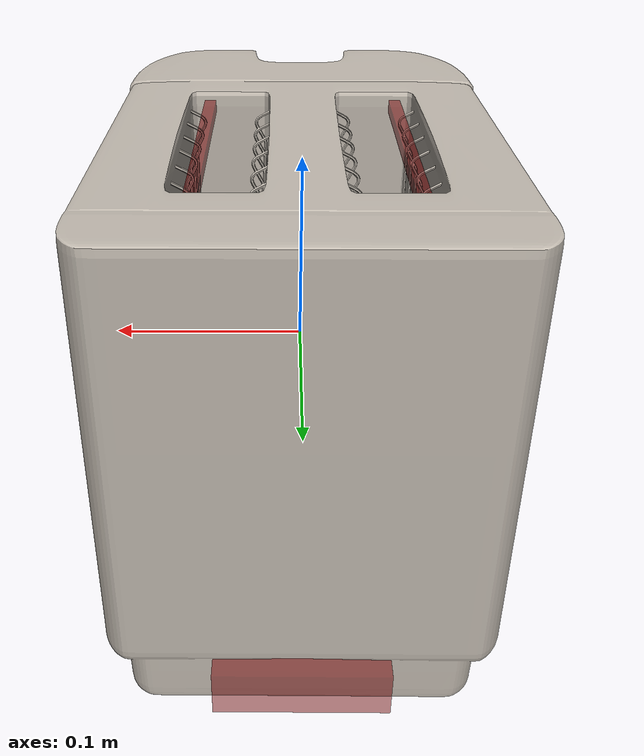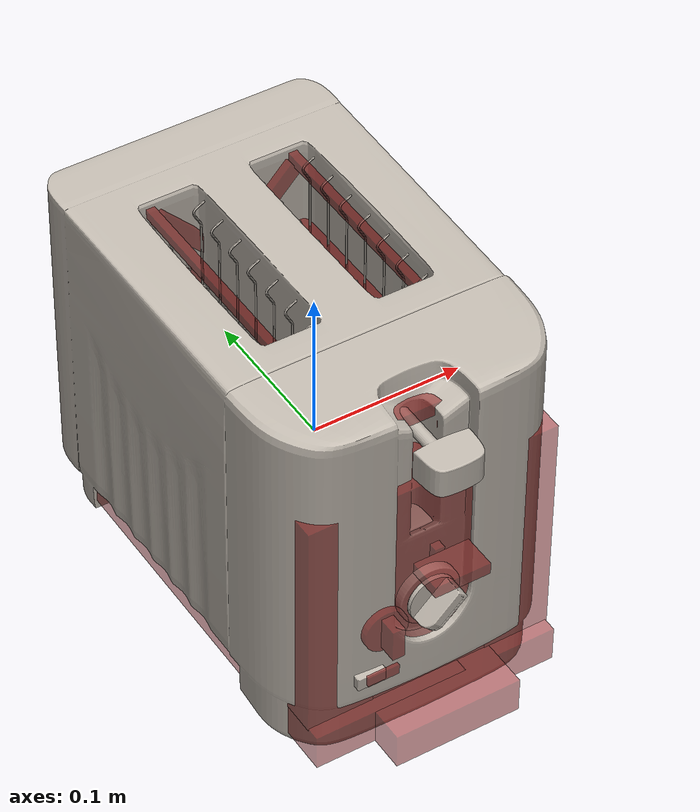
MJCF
<?xml version='1.0' encoding='UTF-8'?>
<mujoco model="model">
  <option timestep="0.002" gravity="0.0 0.0 -9.81"/>
  <compiler angle="radian"/>
  <asset>
    <mesh file="visuals/button_cancel.obj" name="button_cancel_vis"/>
    <mesh file="visuals/knob_doneness.obj" name="knob_doneness_vis"/>
    <mesh file="visuals/lever.obj" name="lever_vis"/>
    <mesh file="visuals/Body001.obj" name="Body001_vis"/>
    <mesh file="visuals/Body002.obj" name="Body002_vis"/>
    <texture file="visuals/T_BC001.png" name="Body001_material" type="2d"/>
    <material name="Body001_material" rgba="1 1 1 1.0" texture="Body001_material" shininess="0.4472135901451111" specular="0.33333333333333337"/>
    <texture file="visuals/T_BC001.png" name="button_cancel_material" type="2d"/>
    <material name="button_cancel_material" rgba="1 1 1 1.0" texture="button_cancel_material" shininess="0.4472135901451111" specular="0.33333333333333337"/>
    <texture file="visuals/T_BC001.png" name="knob_doneness_material" type="2d"/>
    <material name="knob_doneness_material" rgba="1 1 1 1.0" texture="knob_doneness_material" shininess="0.4472135901451111" specular="0.33333333333333337"/>
    <texture file="visuals/T_BC001.png" name="lever_material" type="2d"/>
    <material name="lever_material" rgba="1 1 1 1.0" texture="lever_material" shininess="0.4472135901451111" specular="0.33333333333333337"/>
    <texture file="visuals/T_BC001.png" name="Body002_material" type="2d"/>
    <material name="Body002_material" rgba="1 1 1 1.0" texture="Body002_material" shininess="1" specular="1"/>
  </asset>
  <default>
    <default class="visual">
      <geom conaffinity="0" contype="0" group="1" type="mesh"/>
    </default>
    <default class="collision_1">
      <geom group="0" rgba="0.5 0 0 0.5" solref="0.004 1" solimp="0.998 0.998 0.001"/>
    </default>
    <default class="collision_2">
      <geom group="0" rgba="0.5 0 0 0.5" solref="0.004 1" solimp="0.998 0.998 0.001"/>
    </default>
    <default class="collision_3">
      <geom group="0" rgba="0.5 0 0 0.5" solref="0.004 1" solimp="0.998 0.998 0.001"/>
    </default>
    <default class="collision_4">
      <geom group="0" rgba="0.5 0 0 0.5" solref="0.004 1" solimp="0.998 0.998 0.001"/>
    </default>
    <default class="collision_5">
      <geom group="0" rgba="0.5 0 0 0.5" solref="0.004 1" solimp="0.998 0.998 0.001"/>
    </default>
    <default class="spawn">
      <geom group="0" rgba="1 1 1 0.5" contype="0" conaffinity="0"/>
      <site group="0" rgba="1 1 1 0.5"/>
    </default>
    <default class="region">
      <geom group="1" conaffinity="0" contype="0" rgba="0 1 0 0" mass="0"/>
    </default>
  </default>
  <worldbody>
    <body>
      <body name="object">
        <geom mesh="Body001_vis" type="mesh" solimp="0.998 0.998 0.001" solref="0.001 1" friction="0.95 0.3 0.1" class="visual" material="Body001_material"/>
        <geom type="box" pos="-0.05959776043891907 0.003006658283993602 -0.014668268151581287" size="0.0217216145247221 0.12802141904830933 0.0789102166891098" quat="1.0 0.0 0.0 0.0" class="collision_1"/>
        <geom type="box" pos="0.0 -6.329314783215523e-05 -0.1039624884724617" size="0.041809506714344025 0.1570516973733902 0.012170850299298763" quat="1.0 0.0 0.0 0.0" class="collision_1"/>
        <geom type="box" pos="0.0 -0.09182923287153244 0.09976353496313095" size="0.04052017629146576 0.016902979463338852 0.004405675455927849" quat="1.0 0.0 0.0 0.0" class="collision_1"/>
        <geom type="box" pos="0.0 0.13150560855865479 0.09976353496313095" size="0.04051890969276428 0.01816405914723873 0.0044055115431547165" quat="1.0 0.0 0.0 0.0" class="collision_1"/>
        <geom type="box" pos="0.04742656275629997 0.019866859540343285 0.11498066782951355" size="0.0028668621089309454 0.08754163235425949 0.003078827168792486" quat="1.0 0.0 0.0 0.0" class="collision_1"/>
        <geom type="box" pos="-0.04779965803027153 0.019866859540343285 0.11498066782951355" size="0.0028668621089309454 0.08754149824380875 0.003078827168792486" quat="1.0 0.0 0.0 0.0" class="collision_1"/>
        <geom type="box" pos="-0.023999029770493507 -0.06391765177249908 0.08909869939088821" size="0.03058992326259613 0.0060909586027264595 0.005088799633085728" quat="0.9180940985679626 -3.5591591760126325e-15 0.3963625431060791 5.325481922113795e-08" class="collision_1"/>
        <geom type="box" pos="0.02548745647072792 -0.06391765177249908 0.08909869939088821" size="0.03058992326259613 0.0060909586027264595 0.005088799633085728" quat="0.9180940985679626 -2.6683585540660448e-15 -0.3963625431060791 -5.3254829879278986e-08" class="collision_1"/>
        <geom type="box" pos="-0.023999029770493507 0.09989510476589203 0.08909869939088821" size="0.03058992326259613 0.0060909586027264595 0.005088799633085728" quat="0.9180940985679626 -3.5591591760126325e-15 0.3963625431060791 5.325481922113795e-08" class="collision_1"/>
        <geom type="box" pos="0.02548745647072792 0.09989510476589203 0.08909869939088821" size="0.03058992326259613 0.0060909586027264595 0.005088799633085728" quat="0.9180940985679626 -2.6683585540660448e-15 -0.3963625431060791 -5.3254829879278986e-08" class="collision_1"/>
        <geom type="box" pos="0.0 -0.0004563035909086466 -0.1039624884724617" size="0.08117412030696869 0.1335921287536621 0.012170935049653053" quat="1.0 0.0 0.0 0.0" class="collision_1"/>
        <geom type="box" pos="0.060355402529239655 0.003006658283993602 -0.014668268151581287" size="0.021788600832223892 0.12802141904830933 0.0789102166891098" quat="1.0 0.0 0.0 0.0" class="collision_1"/>
        <geom type="box" pos="-0.003613187000155449 0.11358074098825455 -0.014668268151581287" size="0.04483440890908241 0.017447330057621002 0.0789102166891098" quat="1.0 0.0 0.0 0.0" class="collision_1"/>
        <geom type="box" pos="-0.003613187000155449 -0.0912993922829628 -0.014668268151581287" size="0.04483440890908241 0.033389560878276825 0.0789102166891098" quat="1.0 0.0 0.0 0.0" class="collision_1"/>
        <geom type="box" pos="0.0005880509270355105 0.01837708242237568 -0.01223018579185009" size="0.006125060375779867 0.07681065052747726 0.07706676423549652" quat="1.0 0.0 0.0 0.0" class="collision_1"/>
        <body name="button_cancel">
          <joint axis="0.0 1.0 0.0" pos="-0.03639256954193115 -0.13181017339229584 -0.06497253477573395" limited="true" name="button_cancel_joint" range="0.0 0.0015" type="slide" damping="1" frictionloss="1" armature=".01" stiffness="4" springref="-1"/>
          <geom mesh="button_cancel_vis" type="mesh" solimp="0.998 0.998 0.001" solref="0.001 1" friction="0.95 0.3 0.1" class="visual" material="button_cancel_material"/>
          <geom class="collision_2" type="box" pos="-0.03641565516591072 -0.13255558907985687 -0.06485725939273834" size="0.010387005284428596 0.001249536988325417 0.0034361789003014565" quat="1.0 0.0 0.0 0.0" name="button_cancel_main"/>
        </body>
        <body name="knob_doneness">
          <joint axis="0.0 1.0 0.0" pos="-0.0361320823431015 -0.13823910057544708 -0.026508422568440437" limited="true" name="knob_doneness_joint" range="0.0 5.061454830783556" type="hinge" damping="0.05" armature="1" frictionloss="0.75"/>
          <geom mesh="knob_doneness_vis" type="mesh" solimp="0.998 0.998 0.001" solref="0.001 1" friction="0.95 0.3 0.1" class="visual" material="knob_doneness_material"/>
          <geom type="cylinder" pos="-0.03622971102595329 -0.13319255411624908 -0.026554029434919357" size="0.014290799386799335 0.0024779578670859337" quat="0.7071067094802856 0.7071068286895752 0.0 0.0" class="collision_3" friction="100 0.5 0.01"/>
          <geom class="collision_3" type="box" pos="-0.03622971102595329 -0.14175058901309967 -0.026029111817479134" size="0.0038992089685052633 0.006234823726117611 0.010910904966294765" quat="1.0 0.0 0.0 0.0" name="knob_doneness_main" friction="100 0.5 0.01"/>
        </body>
        <body name="lever">
          <joint axis="0.0 0.0 -1.0" pos="0.00016696378588676453 -0.1372377872467041 0.012610499747097492" limited="true" name="lever_joint" range="0.0 0.067" type="slide" damping="1" frictionloss="1" armature=".1" stiffness="3.2" springref="-0.5"/>
          <geom class="region" name="reg_slotR" type="box" pos="0.022752781864255667 0.018018007278442383 0.0635347981005907" size="0.015446782413870097 0.07541574335098267 0.07574840991199017"/>
          <geom class="region" name="reg_slotL" type="box" pos="-0.022076134104281664 0.01800435781478882 0.06353483162820339" size="0.015637868385761977 0.0754020938873291 0.07574840618669987"/>
          <geom mesh="lever_vis" type="mesh" solimp="0.998 0.998 0.001" solref="0.001 1" friction="0.95 0.3 0.1" class="visual" material="lever_material"/>
          <geom type="box" pos="0.00017940328689292073 -0.12934058904647827 0.012445391155779362" size="0.003036214504390955 0.0029184080194681883 0.004724356345832348" quat="1.0 0.0 0.0 0.0" class="collision_4"/>
          <geom class="collision_4" type="box" pos="0.0 -0.14469368755817413 0.012445391155779362" size="0.018229857087135315 0.011217880994081497 0.003899208502843976" quat="1.0 0.0 0.0 0.0" name="lever_handle"/>
          <geom class="collision_4" type="box" pos="-0.021552925929427147 0.018231840804219246 -0.005865860730409622" size="0.012999999336898327 0.07331018149852753 0.0016080879140645266" quat="1.0 0.0 0.0 0.0" name="slotL_floor"/>
          <geom class="collision_4" type="box" pos="0.022841500118374825 0.018231840804219246 -0.005865860730409622" size="0.012999999336898327 0.07331018149852753 0.0016080803470686078" quat="1.0 0.0 0.0 0.0" name="slotR_floor"/>
        </body>
        <body name="Body002">
          <geom mesh="Body002_vis" type="mesh" solimp="0.998 0.998 0.001" solref="0.001 1" friction="0.95 0.3 0.1" class="visual" material="Body002_material"/>
        </body>
        <geom class="region" name="reg_main" type="box" pos="0.0 0.0 -0.02600167691707611" size="0.08469302749633789 0.1601852903366089 0.09153075313568115"/>
      </body>
    </body>
  </worldbody>
  <actuator>
    <motor name="button_cancel_joint_actuator" joint="button_cancel_joint" gear="0.1"/>
    <motor name="knob_doneness_joint_actuator" joint="knob_doneness_joint" gear="10"/>
    <motor name="lever_joint_actuator" joint="lever_joint" gear="5"/>
  </actuator>
</mujoco>
